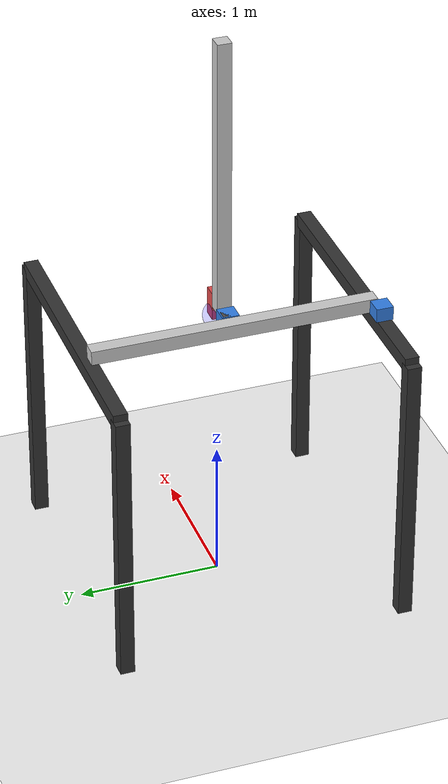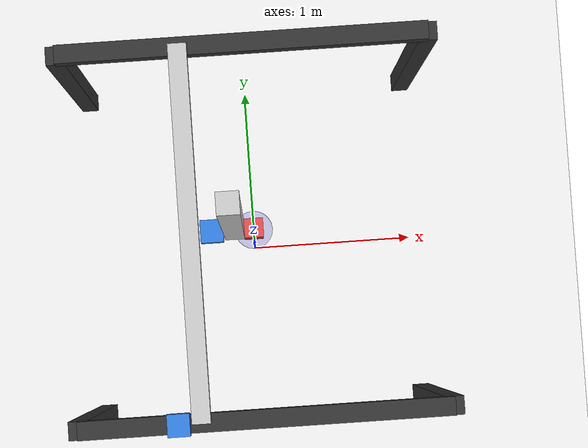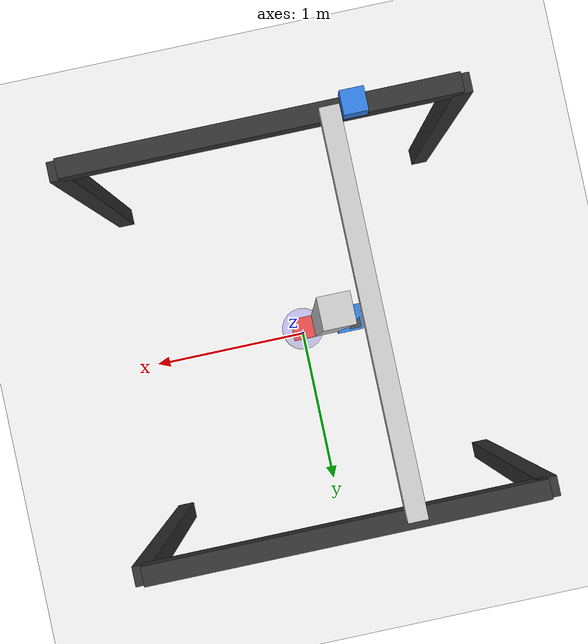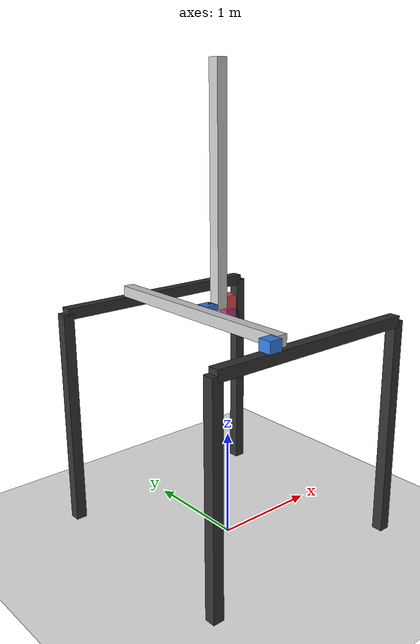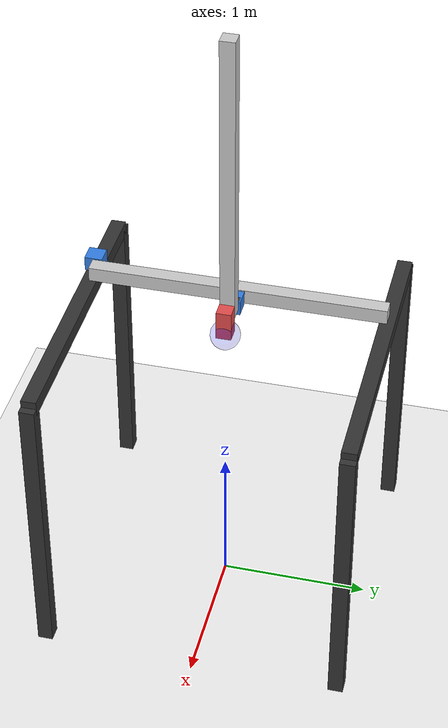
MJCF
<mujoco model="gantry_portal_sea_soft">
  <!-- Portal gantry with SEA joints (motor joint_i + passive spring_i) -->
  <compiler angle="degree" coordinate="local" inertiafromgeom="false"/>

  <option gravity="0 0 -9.81" timestep="0.0002"/>

  <default>
    <geom density="0"
          contype="1" conaffinity="1"
          friction="0.8 0.1 0.1"/>
    <joint limited="true"
           armature="0.01"
           frictionloss="0.0"/>
  </default>
    <asset>
    <texture type="skybox" builtin="gradient"
             rgb1="0.4 0.5 0.8" rgb2="0.3 0.3 0.3"
             width="512" height="512"/>
  </asset>

  <asset>
    <texture name="tile_tex" type="2d"
             builtin="checker"
             rgb1="0.92 0.92 0.92" rgb2="0.86 0.86 0.86"
             mark="edge" markrgb="0.55 0.55 0.55"
             width="1024" height="1024"/>
    <material name="tile_mat" texture="tile_tex"
              texrepeat="8 8" texuniform="true"
              specular="0.4" shininess="0.8"
              reflectance="0.05"/>
  </asset>
  <asset>
    <!-- optional: make it look nicer -->
    <material name="table_wood" rgba="1.0 0.753 0.549 1" specular="0.2" shininess="0.3"/>
  </asset>
  <asset>
    <material name="ceramic" rgba="0.85 0.85 0.88 1" specular="0.6" shininess="0.9"/>
  </asset>
  <contact>
    <!-- Exclude contacts across the spring joints -->
    <exclude body1="cursor_1"       body2="beam3"/>
    <exclude body1="cursor_2"       body2="beam4_carriage"/>
    <exclude body1="beam4"          body2="ee_link"/>
  </contact>

  <worldbody>
    <!-- Table body anchored to world (no joints => fixed) -->
    <geom name="ground" type="plane" size="5 5 0.1" rgba="0.95 0.95 0.95 1"  material="tile_mat"/>

    <!-- Fixed portal structure -->
    <body name="chassis" pos="0 0 0.1">
      <inertial pos="0 0 0"
                mass="0.3049"
                diaginertia="0.1 0.1 0.1"/>

      <!-- Legs (height=2 m). Base corners: (-1,-1,0), (1,-1,0), (-1,1,0), (1,1,0) -->
      <!-- MJCF box 'size' = half-lengths -->
      <geom name="leg1_geom" type="box" size="0.05 0.05 1.0" pos="-1 -1 1" rgba="0.2 0.2 0.2 1"/>
      <geom name="leg2_geom" type="box" size="0.05 0.05 1.0" pos=" 1 -1 1" rgba="0.2 0.2 0.2 1"/>
      <geom name="leg3_geom" type="box" size="0.05 0.05 1.0" pos="-1  1 1" rgba="0.2 0.2 0.2 1"/>
      <geom name="leg4_geom" type="box" size="0.05 0.05 1.0" pos=" 1  1 1" rgba="0.2 0.2 0.2 1"/>

      <!-- Top beams at z=2 (length=2 m along x) -->
      <geom name="beam1_geom" type="box" size="1.0 0.05 0.05" pos="0 -1 2" rgba="0.2 0.2 0.2 1"/>
      <geom name="beam2_geom" type="box" size="1.0 0.05 0.05" pos="0  1 2" rgba="0.2 0.2 0.2 1"/>

      <!-- X stage on beam1: anchor at leg1 top = (-1,-1,2) -->

      <body name="cursor_1" pos="-0.45999999999999996 -1 2.1">
        <inertial pos="0 0 0"
                  mass="0.5735"
                  diaginertia="0.000866667 0.000866667 0.0012"/>
        <joint name="joint_1" type="slide" axis="1 0 0" range="-0.53 1.2"/>
        <geom name="cursor_1_geom" type="box" size="0.06 0.06 0.05" rgba="0.2 0.5 0.9 1"/>

        <!-- Passive spring along x: cursor_1 -> beam3 -->
	<body name="beam3" pos="0.12 0 0">
          <inertial pos="0 1 0"
                    mass="0.3555"
                    diaginertia="0.334167 0.001667 0.334167"/>

          <joint name="spring_1" type="slide" axis="1 0 0"
                 range="-0.18 0.18"
                 springref="0"
                 stiffness="174065.5199"
                 damping="68.9228"/>

          <!-- beam3: 2 m along +y (from y=-1 to y=+1 globally) -->
          <geom name="beam3_geom" type="box"
                size="0.05 1.0 0.05"
                pos="0 1 0"
                rgba="0.8 0.8 0.8 1"/>

          <!-- Y stage on beam3 (moves along +y) -->
          <body name="cursor_2" pos="0.12 1.0 0">
            <inertial pos="0 0 0"
                      mass="0.345"
                      diaginertia="0.000866667 0.000866667 0.0012"/>
            <joint name="joint_2" type="slide" axis="0 1 0" range="-0.85 0.85"/>
            <geom name="cursor_2_geom" type="box" size="0.06 0.06 0.05" rgba="0.2 0.5 0.9 1"/>

            <!-- Passive spring_2 (as requested: x-direction) -->
            <body name="beam4_carriage" pos="0 0 0">
              <inertial pos="0 0 0"
                        mass="0.3927"
                        diaginertia="0.0002 0.0002 0.0002"/>

              <joint name="spring_2" type="slide" axis="0 1 0"
                     range="-0.18 0.18"
                     springref="0"
                     stiffness="166216.6656"
                     damping="59.2526"/>

              <geom name="beam4_carriage_geom" type="box" size="0.05 0.05 0.05" rgba="0.3 0.3 0.3 1"/>

              <!-- Vertical actuator: prismatic joint_3 (z-direction) -->
              <!-- Interpret 'rest: lower end aligned with beam3' as joint_3=0; extend down with negative z -->
              <body name="beam4" pos="0.12 0 0">
                <inertial pos="0 0 1"
                          mass="0.603"
                          diaginertia="0.334167 0.334167 0.001667"/>
                <joint name="joint_3" type="slide" axis="0 0 -1" range="-0.05 2.0"/>

                <!-- beam4: vertical member (length=2 m), link frame at its lower end; geom centered at z=+1 -->
                <geom name="beam4_geom" type="box"
                      size="0.05 0.05 1.0"
                      pos="0 0 1"
                      rgba="0.8 0.8 0.8 1"/>

                <!-- Passive spring_3 between beam4 lower end and end-effector -->
                <body name="ee_link" pos="0.1 0 0.05">
                  <inertial pos="0 0 -0.05"
                            mass="0.359"
                            diaginertia="0.000333333 0.000333333 0.000333333"/>

                  <joint name="spring_3" type="slide" axis="0 0 1"
                         range="-0.18 0.18"
                         springref="0"
                         stiffness="113657.8524"
                         damping="55.3827"/>

                  <geom name="ee_geom" type="box"
                        size="0.05 0.05 0.10"
                        pos="0 0 -0.05"
                        rgba="0.9 0.3 0.3 1"/>

                  <site name="ee" pos="0.0 0 -0.15000000000000002" size="0.10" rgba="0.0 0.0 1.0 0.1"/>
                </body>
              </body>
            </body>
          </body>
        </body>
      </body>
    </body>
  </worldbody>

  <actuator>
    <motor name="motor_1" joint="joint_1"
           ctrllimited="true" ctrlrange="-300 300"
           forcelimited="true" forcerange="-300 300"
           gear="1"/>
    <motor name="motor_2" joint="joint_2"
           ctrllimited="true" ctrlrange="-300 300"
           forcelimited="true" forcerange="-300 300"
           gear="1"/>
    <motor name="motor_3" joint="joint_3"
           ctrllimited="true" ctrlrange="-300 300"
           forcelimited="true" forcerange="-300 300"
           gear="1"/>
  </actuator>
</mujoco>
